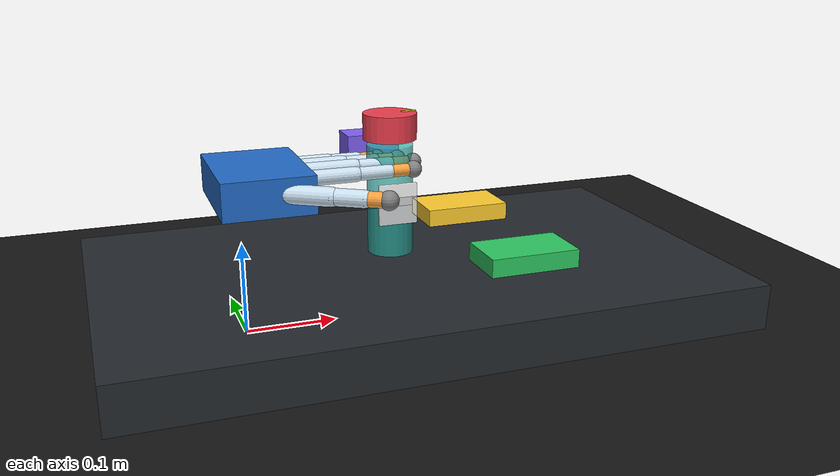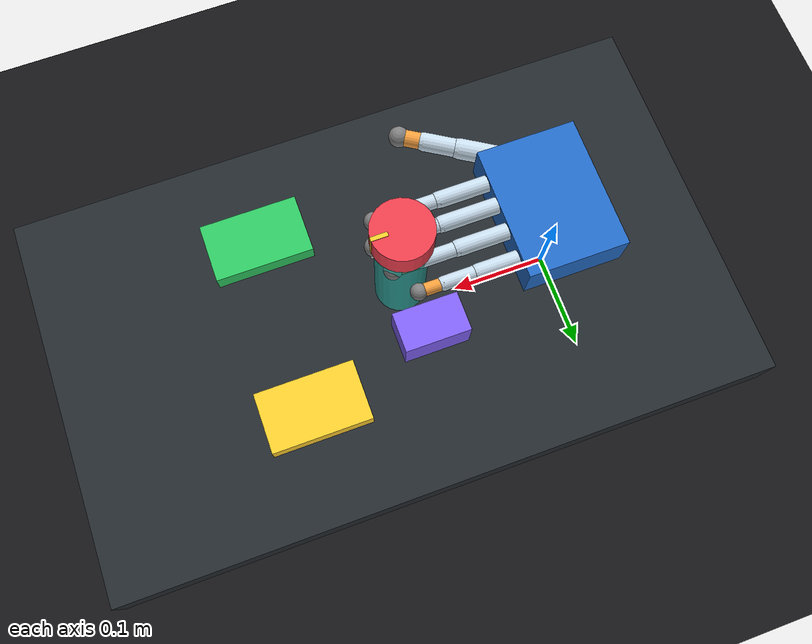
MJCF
<mujoco model="nexus_dextraforge">
  <compiler angle="degree" autolimits="true"/>
  <option timestep="0.002" gravity="0 0 -9.81" integrator="RK4"/>
  <visual>
    <global offwidth="960" offheight="544"/>
  </visual>

  <asset>
    <texture name="grid" type="2d" builtin="checker" rgb1="0.05 0.05 0.055" rgb2="0.12 0.12 0.13" width="256" height="256"/>
    <material name="floor" texture="grid" texrepeat="6 6" reflectance="0.12"/>
    <material name="palm" rgba="0.14 0.42 0.78 1"/>
    <material name="finger" rgba="0.78 0.86 0.92 1"/>
    <material name="tip" rgba="0.96 0.62 0.24 1"/>
    <material name="vial" rgba="0.18 0.75 0.70 0.72"/>
    <material name="cap" rgba="0.92 0.24 0.30 1"/>
    <material name="tray" rgba="0.14 0.16 0.18 1"/>
    <material name="ok" rgba="0.18 0.78 0.38 1"/>
    <material name="warn" rgba="1.0 0.80 0.18 1"/>
    <material name="load" rgba="0.50 0.38 0.96 1"/>
  </asset>

  <default>
    <geom condim="4" friction="1.3 0.04 0.004" solref="0.01 1" solimp="0.92 0.96 0.001"/>
    <joint damping="0.35" armature="0.01"/>
    <position kp="12" kv="2.5"/>
  </default>

  <worldbody>
    <light pos="0 -0.6 0.8" dir="0 0 -1" diffuse="0.8 0.8 0.8"/>
    <light pos="-0.35 0.2 0.5" dir="0.5 -0.3 -1" diffuse="0.45 0.55 0.65"/>
    <camera name="demo" pos="0.40 -0.56 0.36" xyaxes="0.82 0.57 0 -0.23 0.33 0.92"/>

    <geom name="floor" type="plane" size="1.0 1.0 0.01" material="floor"/>
    <geom name="bench" type="box" pos="0.18 0 0.035" size="0.34 0.20 0.025" material="tray"/>

    <body name="vial" pos="0.165 0 0.135">
      <geom name="vial_glass" type="cylinder" size="0.025 0.060" material="vial" mass="0.08"/>
      <geom name="vial_label" type="box" pos="0 -0.026 0" size="0.021 0.002 0.022" rgba="1 1 1 0.85"/>
      <body name="cap" pos="0 0 0.080">
        <joint name="cap_twist" type="hinge" axis="0 0 1" range="0 260" damping="0.05"/>
        <geom name="cap_geom" type="cylinder" size="0.029 0.014" material="cap" mass="0.015"/>
        <geom name="cap_ridge" type="box" pos="0.021 0 0" size="0.008 0.002 0.015" material="warn"/>
      </body>
    </body>

    <body name="payload_marker" pos="0.165 0.075 0.175">
      <geom type="box" size="0.030 0.018 0.018" material="load" mass="0.72"/>
    </body>

    <body name="kit_slot_a" pos="0.285 -0.09 0.085">
      <geom type="box" size="0.050 0.030 0.010" material="ok"/>
    </body>
    <body name="kit_slot_b" pos="0.285 0.09 0.085">
      <geom type="box" size="0.050 0.030 0.010" material="warn"/>
    </body>

    <body name="hand" pos="0.020 0 0.165">
      <geom name="palm" type="box" size="0.048 0.064 0.020" material="palm" contype="1" conaffinity="1"/>

      <body name="thumb_1" pos="0.020 -0.058 0.002" euler="0 0 -32">
        <joint name="thumb_prox" type="hinge" axis="0 1 0" range="-5 82"/>
        <geom type="capsule" fromto="0 0 0 0.044 0 0" size="0.010" material="finger"/>
        <body name="thumb_2" pos="0.044 0 0">
          <joint name="thumb_mid" type="hinge" axis="0 1 0" range="-5 90"/>
          <geom type="capsule" fromto="0 0 0 0.034 0 0" size="0.009" material="finger"/>
          <body name="thumb_3" pos="0.034 0 0">
            <joint name="thumb_dist" type="hinge" axis="0 1 0" range="-5 95"/>
            <geom name="thumb_tip" type="capsule" fromto="0 0 0 0.024 0 0" size="0.008" material="tip"/>
            <site name="thumb_touch" pos="0.024 0 0" size="0.010"/>
          </body>
        </body>
      </body>

      <body name="index_1" pos="0.046 -0.036 0.010">
        <joint name="index_prox" type="hinge" axis="0 1 0" range="-5 92"/>
        <geom type="capsule" fromto="0 0 0 0.050 0 0" size="0.008" material="finger"/>
        <body name="index_2" pos="0.050 0 0">
          <joint name="index_mid" type="hinge" axis="0 1 0" range="-5 98"/>
          <geom type="capsule" fromto="0 0 0 0.037 0 0" size="0.007" material="finger"/>
          <body name="index_3" pos="0.037 0 0">
            <joint name="index_dist" type="hinge" axis="0 1 0" range="-5 98"/>
            <geom name="index_tip" type="capsule" fromto="0 0 0 0.026 0 0" size="0.0065" material="tip"/>
            <site name="index_touch" pos="0.026 0 0" size="0.009"/>
          </body>
        </body>
      </body>

      <body name="middle_1" pos="0.048 -0.012 0.012">
        <joint name="middle_prox" type="hinge" axis="0 1 0" range="-5 94"/>
        <geom type="capsule" fromto="0 0 0 0.054 0 0" size="0.008" material="finger"/>
        <body name="middle_2" pos="0.054 0 0">
          <joint name="middle_mid" type="hinge" axis="0 1 0" range="-5 100"/>
          <geom type="capsule" fromto="0 0 0 0.039 0 0" size="0.007" material="finger"/>
          <body name="middle_3" pos="0.039 0 0">
            <joint name="middle_dist" type="hinge" axis="0 1 0" range="-5 98"/>
            <geom name="middle_tip" type="capsule" fromto="0 0 0 0.026 0 0" size="0.0065" material="tip"/>
            <site name="middle_touch" pos="0.026 0 0" size="0.009"/>
          </body>
        </body>
      </body>

      <body name="ring_1" pos="0.046 0.014 0.010">
        <joint name="ring_prox" type="hinge" axis="0 1 0" range="-5 92"/>
        <geom type="capsule" fromto="0 0 0 0.050 0 0" size="0.008" material="finger"/>
        <body name="ring_2" pos="0.050 0 0">
          <joint name="ring_mid" type="hinge" axis="0 1 0" range="-5 98"/>
          <geom type="capsule" fromto="0 0 0 0.037 0 0" size="0.007" material="finger"/>
          <body name="ring_3" pos="0.037 0 0">
            <joint name="ring_dist" type="hinge" axis="0 1 0" range="-5 98"/>
            <geom name="ring_tip" type="capsule" fromto="0 0 0 0.025 0 0" size="0.0065" material="tip"/>
            <site name="ring_touch" pos="0.025 0 0" size="0.009"/>
          </body>
        </body>
      </body>

      <body name="little_1" pos="0.043 0.040 0.007">
        <joint name="little_prox" type="hinge" axis="0 1 0" range="-5 86"/>
        <geom type="capsule" fromto="0 0 0 0.044 0 0" size="0.0075" material="finger"/>
        <body name="little_2" pos="0.044 0 0">
          <joint name="little_mid" type="hinge" axis="0 1 0" range="-5 92"/>
          <geom type="capsule" fromto="0 0 0 0.033 0 0" size="0.0068" material="finger"/>
          <body name="little_3" pos="0.033 0 0">
            <joint name="little_dist" type="hinge" axis="0 1 0" range="-5 92"/>
            <geom name="little_tip" type="capsule" fromto="0 0 0 0.023 0 0" size="0.006" material="tip"/>
            <site name="little_touch" pos="0.023 0 0" size="0.008"/>
          </body>
        </body>
      </body>
    </body>
  </worldbody>

  <actuator>
    <position name="a_thumb_prox" joint="thumb_prox"/>
    <position name="a_thumb_mid" joint="thumb_mid"/>
    <position name="a_thumb_dist" joint="thumb_dist"/>
    <position name="a_index_prox" joint="index_prox"/>
    <position name="a_index_mid" joint="index_mid"/>
    <position name="a_index_dist" joint="index_dist"/>
    <position name="a_middle_prox" joint="middle_prox"/>
    <position name="a_middle_mid" joint="middle_mid"/>
    <position name="a_middle_dist" joint="middle_dist"/>
    <position name="a_ring_prox" joint="ring_prox"/>
    <position name="a_ring_mid" joint="ring_mid"/>
    <position name="a_ring_dist" joint="ring_dist"/>
    <position name="a_little_prox" joint="little_prox"/>
    <position name="a_little_mid" joint="little_mid"/>
    <position name="a_little_dist" joint="little_dist"/>
    <position name="a_cap_twist" joint="cap_twist" kp="20" kv="3"/>
  </actuator>

  <sensor>
    <touch name="thumb_pressure" site="thumb_touch"/>
    <touch name="index_pressure" site="index_touch"/>
    <touch name="middle_pressure" site="middle_touch"/>
    <touch name="ring_pressure" site="ring_touch"/>
    <touch name="little_pressure" site="little_touch"/>
    <jointpos name="cap_angle" joint="cap_twist"/>
  </sensor>
</mujoco>
